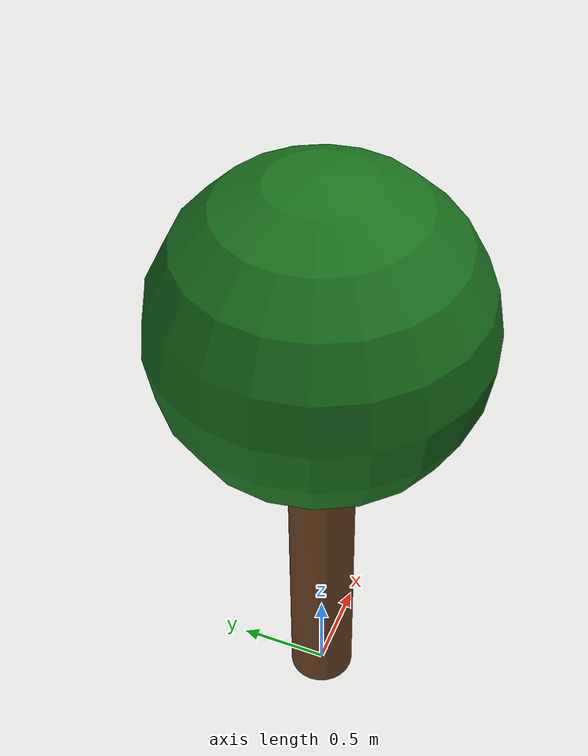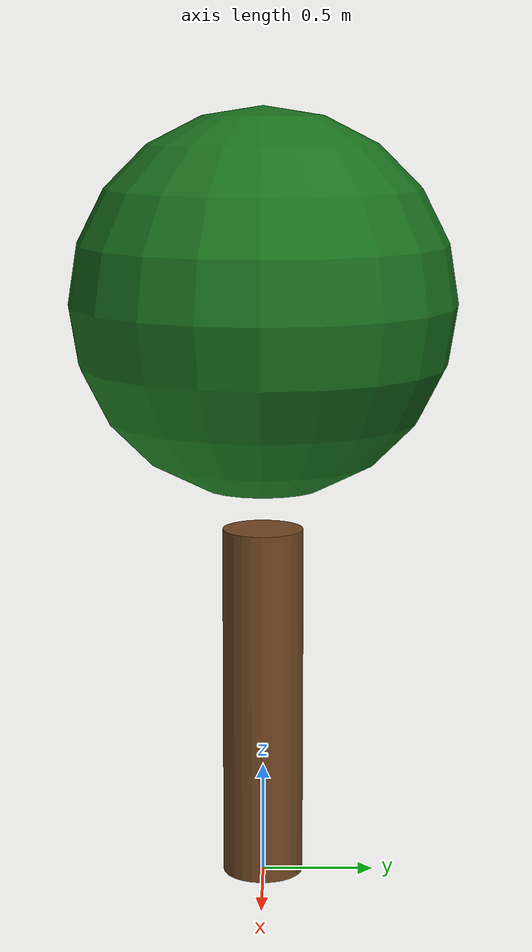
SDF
<?xml version="1.0" ?>
<sdf version="1.8">
  <model name="simple_tree">
    <static>true</static>
    <link name="link">
      <!-- Trunk -->
      <pose>0 0 0.8 0 0 0</pose>
      <collision name="trunk_collision">
        <geometry>
          <cylinder>
            <radius>0.18</radius>
            <length>1.6</length>
          </cylinder>
        </geometry>
      </collision>
      <visual name="trunk_visual">
        <geometry>
          <cylinder>
            <radius>0.18</radius>
            <length>1.6</length>
          </cylinder>
        </geometry>
        <material>
          <ambient>0.35 0.22 0.12 1</ambient>
          <diffuse>0.45 0.28 0.14 1</diffuse>
          <specular>0.05 0.05 0.05 1</specular>
        </material>
      </visual>

      <!-- Foliage canopy (simple ellipsoid using scaled sphere) -->
      <collision name="canopy_collision">
        <pose>0 0 1.8 0 0 0</pose>
        <geometry>
          <sphere>
            <radius>0.85</radius>
          </sphere>
        </geometry>
      </collision>
      <visual name="canopy_visual">
        <pose>0 0 1.8 0 0 0</pose>
        <geometry>
          <sphere>
            <radius>0.85</radius>
          </sphere>
        </geometry>
        <material>
          <ambient>0.12 0.25 0.12 1</ambient>
          <diffuse>0.10 0.45 0.12 1</diffuse>
          <specular>0.02 0.02 0.02 1</specular>
        </material>
      </visual>
    </link>
  </model>
</sdf>
